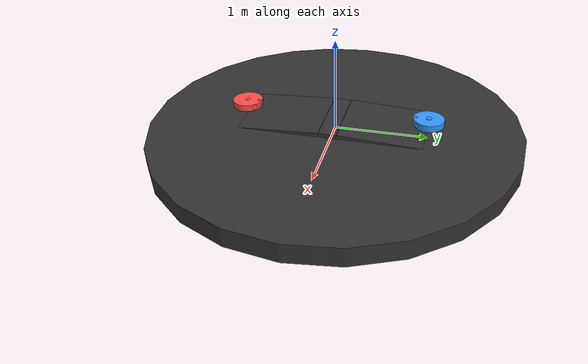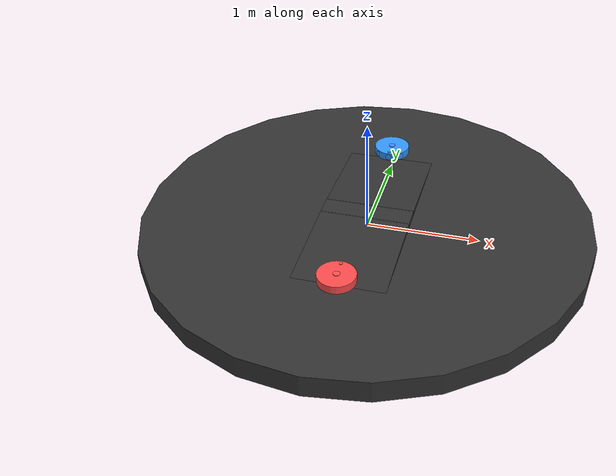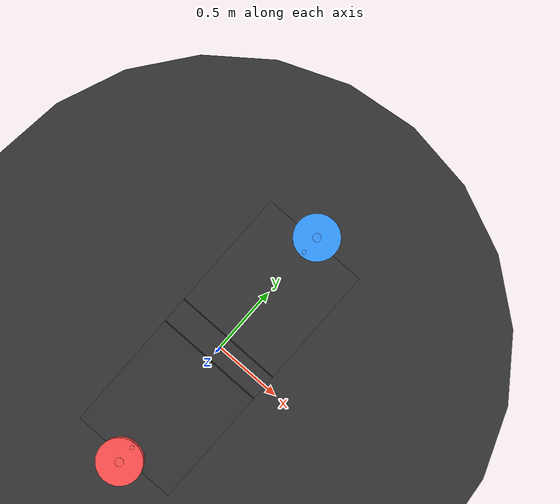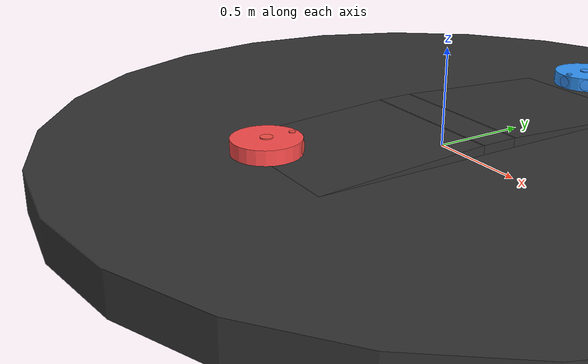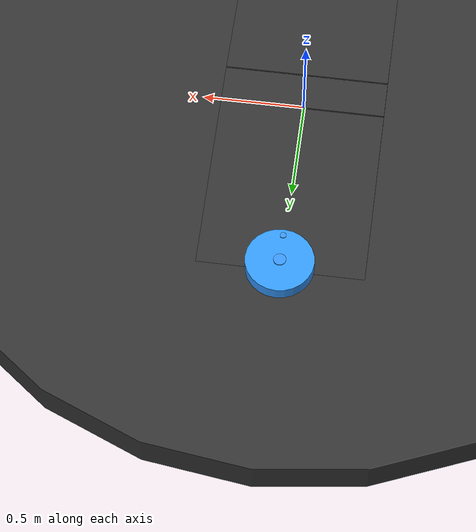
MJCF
<mujoco model="roomba_v1">
    <option iterations="8" ls_iterations="16" solver="Newton" timestep="0.002">
    </option>
    <default>
        <motor ctrllimited="true" ctrlrange="-1 1"/>
        <geom density="700"/>
        <joint damping="0.1" armature="0.1"/>
    </default>
    <asset>
        <texture name="skybox" type="skybox" builtin="gradient" rgb1=".4 .6 .8" rgb2="0 0 0"
               width="800" height="800" mark="random" markrgb="1 1 1"/>
        <material name="sky" texture="skybox" emission="1"/>
        <material name="roomba1_color" rgba="0.2 0.6 1 1"/>   <!-- Blue -->
        <material name="roomba1_decal_color" rgba="0.22 0.58 0.98 1"/>
        <material name="roomba2_color" rgba="1 0.3 0.3 1"/>   <!-- Red -->
        <material name="roomba2_decal_color" rgba="0.98 0.32 0.28 1"/>
        <material name="floor_color" rgba="0.2 0.2 0.2 1"/>
    </asset>
    <worldbody>
        <geom name="floor" type="cylinder" size="2 0.1" pos="0 0 0" material="floor_color" friction="0.9 0.005 0.0001"/>
        <geom name="box" type="box" size="0.4 0.1 0.05" pos="0 0 0.0965" material="floor_color" friction="0.9 0.005 0.0001"/>
        <geom name="ramp1" type="box" size="0.4 0.51 0.05" pos="0 -0.6 0.07" material="floor_color" friction="0.9 0.005 0.0001" quat="0.9997 0.0262 0 0"/>
        <geom name="ramp2" type="box" size="0.4 0.51 0.05" pos="0 0.6 0.07" material="floor_color" friction="0.9 0.005 0.0001" quat="0.9997 -0.0262 0 0"/>
        <light name="light" pos="0 0 7" dir="0 0 -1" mode="fixed"/>
        <camera name="side" pos="-4 0 2" xyaxes="0 -1 0 1 0 2" mode="fixed"/>
        <body name="roomba1" pos="0 1 0.2">
            <freejoint name="root1"/>
            <geom name="roomba1" type="cylinder" size="0.1625 0.035" pos="0 0 0" material="roomba1_color"/>
            <site name="front_sensor1" type="ellipsoid" pos="0 -0.1625 0" size=".03 .001 .03" material="roomba1_decal_color"/>
            <site name="front_range1" type="sphere" size="0.01" pos="0 -0.1625 0" quat="0.7071 0.7071 0 0" rgba="0 0 0 0"/>
            <site name="front_cliff1" type="sphere" size="0.01" pos="0 -0.1675 0" quat="0 1 0 0" rgba="0 0 0 0"/>
            <geom type="ellipsoid" pos="0 -0.1625 0" size=".03 .001 .03" material="roomba1_decal_color"/>
            <site name="side_sensor_left1" type="ellipsoid" pos="0.11 -0.12 0" size=".001 .03 .03" quat="0.3827 0 0 0.9239" material="roomba1_decal_color"/>
            <site name="side_left_range1" type="sphere" size="0.01" pos="0.11 -0.12 0" quat="0.653 0.653 0.270 0.270" rgba="0 0 0 0"/>
            <site name="side_left_cliff1" type="sphere" size="0.01" pos="0.15 -0.07 0" quat="0 1 0 0" rgba="0 0 0 0"/>
            <geom type="ellipsoid" pos="0.11 -0.12 0" size=".001 .03 .03" quat="0.3827 0 0 0.9239" material="roomba1_decal_color"/>
            <site name="side_sensor_right1" type="ellipsoid" pos="-0.11 -0.12 0" size=".03 .001 .03" quat="0.3827 0 0 0.9239" material="roomba1_decal_color"/>
            <site name="side_right_range1" type="sphere" size="0.01" pos="-0.11 -0.12 0" quat="0.653 0.653 -0.270 -0.270" rgba="0 0 0 0"/>
            <site name="side_right_cliff1" type="sphere" size="0.01" pos="-0.15 -0.07 0" quat="0 1 0 0" rgba="0 0 0 0"/>
            <geom type="ellipsoid" pos="-0.11 -0.12 0" size=".03 .001 .03" quat="0.3827 0 0 0.9239" material="roomba1_decal_color"/>
            <body name="lwheel1" pos="0.115 0.005 -0.005">
                <joint name="lwheel1" type="hinge" axis="1 0 0"/>
                <geom type="cylinder" size="0.04 0.015" quat="0 0.7071 0 0.7071"/>
            </body>
            <body name="rwheel1" pos="-0.115 0.005 -0.005">
                <joint name="rwheel1" type="hinge" axis="1 0 0"/>
                <geom type="cylinder" size="0.04 0.015" quat="0 0.7071 0 0.7071"/>
            </body>
            <body name="fwheel1" pos="0 -0.13 -0.025">
                <geom type="sphere" size="0.02" friction="0 0 0"/>
            </body>
            <body name="fsensor1" pos="0 -0.13 0.02">
                <geom type="cylinder" size="0.015 0.02" material="roomba1_decal_color" contype="0" conaffinity="0"/>
            </body>
            <body name="onbutton1" pos="0 0 0.02">
                <geom type="cylinder" size="0.03 0.02" material="roomba1_decal_color" contype="0" conaffinity="0"/>
            </body>
        </body>
        <body name="roomba2" pos="0 -1 0.2" quat="0 0 0 1">
            <freejoint name="root2"/>
            <geom name="roomba2" type="cylinder" size="0.1625 0.035" pos="0 0 0" material="roomba2_color"/>
            <site name="front_sensor2" type="ellipsoid" pos="0 -0.1625 0" size=".03 .001 .03" material="roomba2_decal_color"/>
            <site name="front_range2" type="sphere" size="0.01" pos="0 -0.1625 0" quat="0.7071 0.7071 0 0" rgba="0 0 0 0"/>
            <site name="front_cliff2" type="sphere" size="0.01" pos="0 -0.1675 0" quat="0 1 0 0" rgba="0 0 0 0"/>
            <geom type="ellipsoid" pos="0 -0.1625 0" size=".03 .001 .03" material="roomba2_decal_color"/>
            <site name="side_sensor_left2" type="ellipsoid" pos="0.11 -0.12 0" size=".001 .03 .03" quat="0.3827 0 0 0.9239" material="roomba2_decal_color"/>
            <site name="side_left_range2" type="sphere" size="0.01" pos="0.11 -0.12 0" quat="0.653 0.653 0.270 0.270" rgba="0 0 0 0"/>
            <site name="side_left_cliff2" type="sphere" size="0.01" pos="0.15 -0.07 0" quat="0 1 0 0" rgba="0 0 0 0"/>
            <geom type="ellipsoid" pos="0.11 -0.12 0" size=".001 .03 .03" quat="0.3827 0 0 0.9239" material="roomba2_decal_color"/>
            <site name="side_sensor_right2" type="ellipsoid" pos="-0.11 -0.12 0" size=".03 .001 .03" quat="0.3827 0 0 0.9239" material="roomba2_decal_color"/>
            <site name="side_right_range2" type="sphere" size="0.01" pos="-0.11 -0.12 0" quat="0.653 0.653 -0.270 -0.270" rgba="0 0 0 0"/>
            <site name="side_right_cliff2" type="sphere" size="0.01" pos="-0.15 -0.07 0" quat="0 1 0 0" rgba="0 0 0 0"/>
            <geom type="ellipsoid" pos="-0.11 -0.12 0" size=".03 .001 .03" quat="0.3827 0 0 0.9239" material="roomba2_decal_color"/>
            <body name="lwheel2" pos="0.115 0.005 -0.005">
                <joint name="lwheel2" type="hinge" axis="1 0 0"/>
                <geom type="cylinder" size="0.04 0.015" quat="0 0.7071 0 0.7071"/>
            </body>
            <body name="rwheel2" pos="-0.115 0.005 -0.005">
                <joint name="rwheel2" type="hinge" axis="1 0 0"/>
                <geom type="cylinder" size="0.04 0.015" quat="0 0.7071 0 0.7071"/>
            </body>
            <body name="fwheel2" pos="0 -0.13 -0.025">
                <geom type="sphere" size="0.02" friction="0 0 0"/>
            </body>
            <body name="fsensor2" pos="0 -0.13 0.02">
                <geom type="cylinder" size="0.015 0.02" material="roomba2_decal_color" contype="0" conaffinity="0"/>
            </body>
            <body name="onbutton2" pos="0 0 0.02">
                <geom type="cylinder" size="0.03 0.02" material="roomba2_decal_color" contype="0" conaffinity="0"/>
            </body>
        </body>
    </worldbody>

    <actuator>
        <motor name="lwheel1" joint="lwheel1" gear="2"/>
        <motor name="rwheel1" joint="rwheel1" gear="2"/>
        <motor name="lwheel2" joint="lwheel2" gear="2"/>
        <motor name="rwheel2" joint="rwheel2" gear="2"/>
    </actuator>

    <sensor>
        <!-- Roomba 1 -->
        <touch name="front_sensor1" site="front_sensor1"/>
        <rangefinder name="front_range1" site="front_range1"/>
        <rangefinder name="front_cliff1" site="front_cliff1"/>
        <touch name="side_sensor_left1" site="side_sensor_left1"/>
        <rangefinder name="side_left_range1" site="side_left_range1"/>
        <rangefinder name="side_left_cliff1" site="side_left_cliff1"/>
        <touch name="side_sensor_right1" site="side_sensor_right1"/>
        <rangefinder name="side_right_range1" site="side_right_range1"/>
        <rangefinder name="side_right_cliff1" site="side_right_cliff1"/>

        <!-- Roomba 2 -->
        <touch name="front_sensor2" site="front_sensor2"/>
        <rangefinder name="front_range2" site="front_range2"/>
        <rangefinder name="front_cliff2" site="front_cliff2"/>
        <touch name="side_sensor_left2" site="side_sensor_left2"/>
        <rangefinder name="side_left_range2" site="side_left_range2"/>
        <rangefinder name="side_left_cliff2" site="side_left_cliff2"/>

        <touch name="side_sensor_right2" site="side_sensor_right2"/>
        <rangefinder name="side_right_range2" site="side_right_range2"/>
        <rangefinder name="side_right_cliff2" site="side_right_cliff2"/>
    </sensor>
</mujoco>
